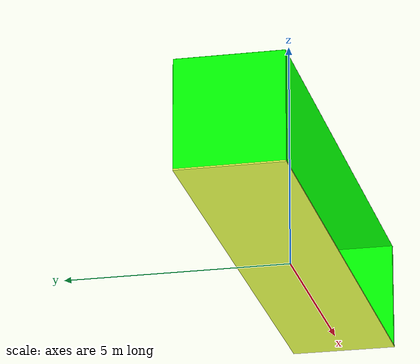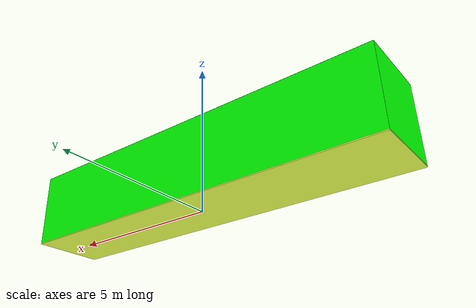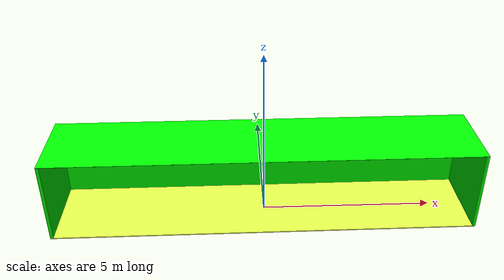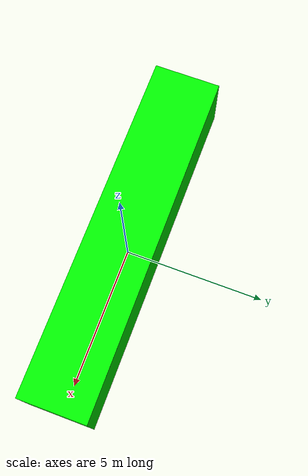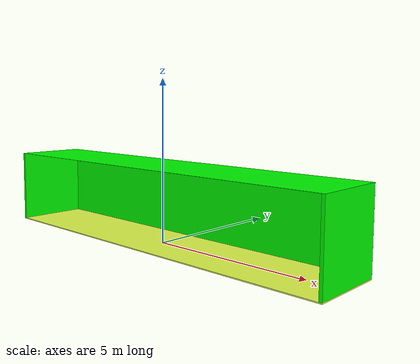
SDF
<?xml version="1.0"?>
<sdf version="1.7">
    <model name="std_cargo_container_40ft_right_side_removed" canonical_link="container_link" placement_frame="container_link">
        <static>false</static>
        <self_collide>false</self_collide>

        <!--
        The container_link is at the center of the bottom face of the container.
        -->
        <link name="container_link">
            <visual name="floor_visual">
                <geometry>
                    <box>
                        <size>12.19 2.336 0.03</size>
                    </box>
                </geometry>
                <pose>0 0 0.015 0 0 0</pose>
                <material>
                    <ambient>0.9 1.0 0.3 1</ambient>
                    <diffuse>0.9 1.0 0.3 1</diffuse>
                    <specular>0.3 0.3 0.1 1</specular>
                </material>
            </visual>

            <visual name="left_wall_visual">
                <geometry>
                    <box>
                        <size>12.19 0.003 2.38</size>
                    </box>
                </geometry>
                <pose>0 1.1665 1.22 0 0 0</pose>
                <material>
                    <ambient>0 1 0 1</ambient>
                    <diffuse>0 1 0 1</diffuse>
                    <specular>0.2 0.2 0.2 1</specular>
                </material>
            </visual>

            <visual name="ceiling_visual">
                <geometry>
                    <box>
                        <size>12.19 2.336 0.003</size>
                    </box>
                </geometry>
                <pose>0 0 2.4115 0 0 0</pose>
                <material>
                    <ambient>0 1 0 1</ambient>
                    <diffuse>0 1 0 1</diffuse>
                    <specular>0.2 0.2 0.2 1</specular>
                </material>
            </visual>

            <visual name="front_wall_visual">
                <geometry>
                    <box>
                        <size>0.09 2.33 2.38</size>
                    </box>
                </geometry>
                <pose>6.050 0 1.22 0 0 0</pose>
                <material>
                    <ambient>0 1 0 1</ambient>
                    <diffuse>0 1 0 1</diffuse>
                    <specular>0.2 0.2 0.2 1</specular>
                </material>
            </visual>

            <visual name="back_wall_visual">
                <geometry>
                    <box>
                        <size>0.09 2.33 2.38</size>
                    </box>
                </geometry>
                <pose>-6.050 0 1.22 0 0 0</pose>
                <material>
                    <ambient>0 1 0 1</ambient>
                    <diffuse>0 1 0 1</diffuse>
                    <specular>0.2 0.2 0.2 1</specular>
                </material>
            </visual>

            <collision name="floor_collision">
                <geometry>
                    <box>
                        <size>12.19 2.336 0.03</size>
                    </box>
                </geometry>
                <pose>0 0 0.015 0 0 0</pose>
            </collision>

            <collision name="left_wall_collision">
                <geometry>
                    <box>
                        <size>12.19 0.003 2.38</size>
                    </box>
                </geometry>
                <pose>0 1.1665 1.22 0 0 0</pose>
            </collision>

            <collision name="ceiling_collision">
                <geometry>
                    <box>
                        <size>12.19 2.336 0.003</size>
                    </box>
                </geometry>
                <pose>0 0 2.4115 0 0 0</pose>
            </collision>

            <collision name="front_wall_collision">
                <geometry>
                    <box>
                        <size>0.09 2.33 2.38</size>
                    </box>
                </geometry>
                <pose>6.050 0 1.22 0 0 0</pose>
            </collision>

            <collision name="back_wall_collision">
                <geometry>
                    <box>
                        <size>0.09 2.33 2.38</size>
                    </box>
                </geometry>
                <pose>-6.050 0 1.22 0 0 0</pose>
            </collision>

            <inertial>
                <mass>3701.0</mass>
                <inertia>
                    <ixx>3416.627</ixx>
                    <ixy>0.0</ixy>
                    <ixz>0.0</ixz>
                    <iyy>1750.107</iyy>
                    <iyz>0.0</iyz>
                    <izz>1676.303</izz>
                </inertia>
                <pose>0 0 1.2065 0 0 0</pose>
            </inertial>
            <pose>0 0 0 0 0 0</pose>
        </link>
    </model>
</sdf>
